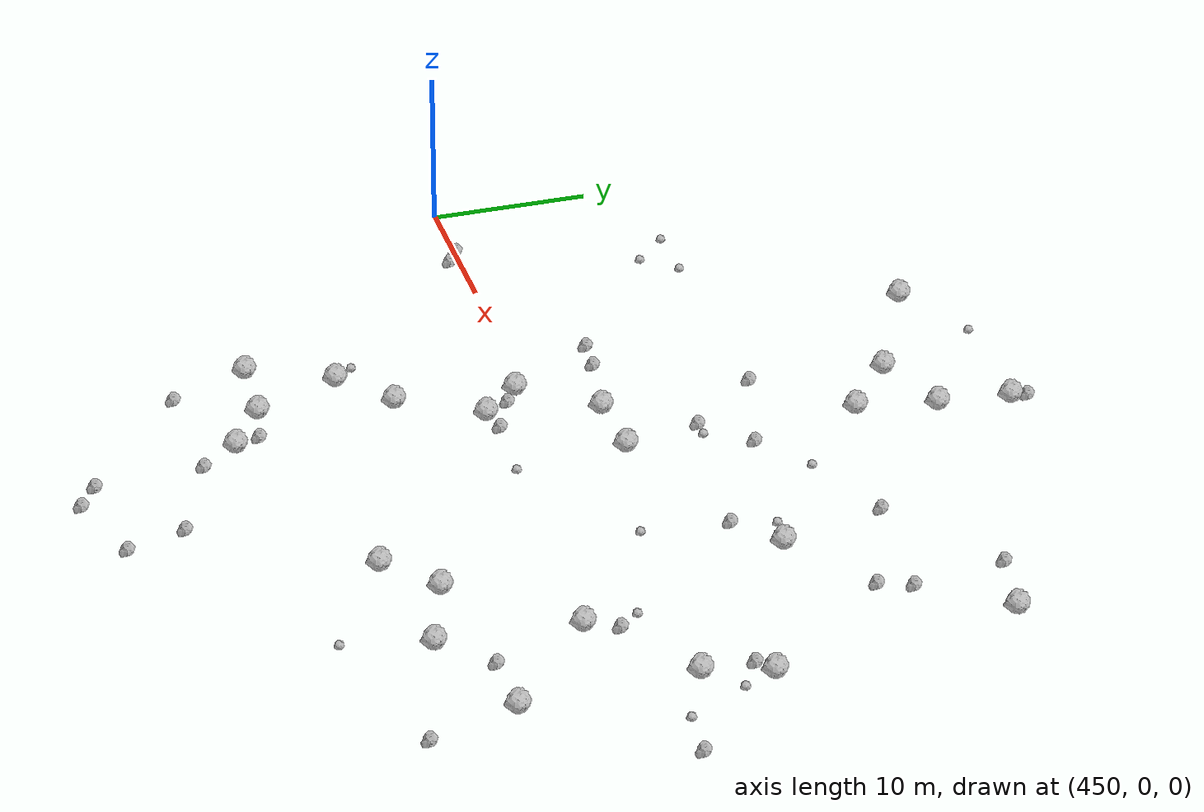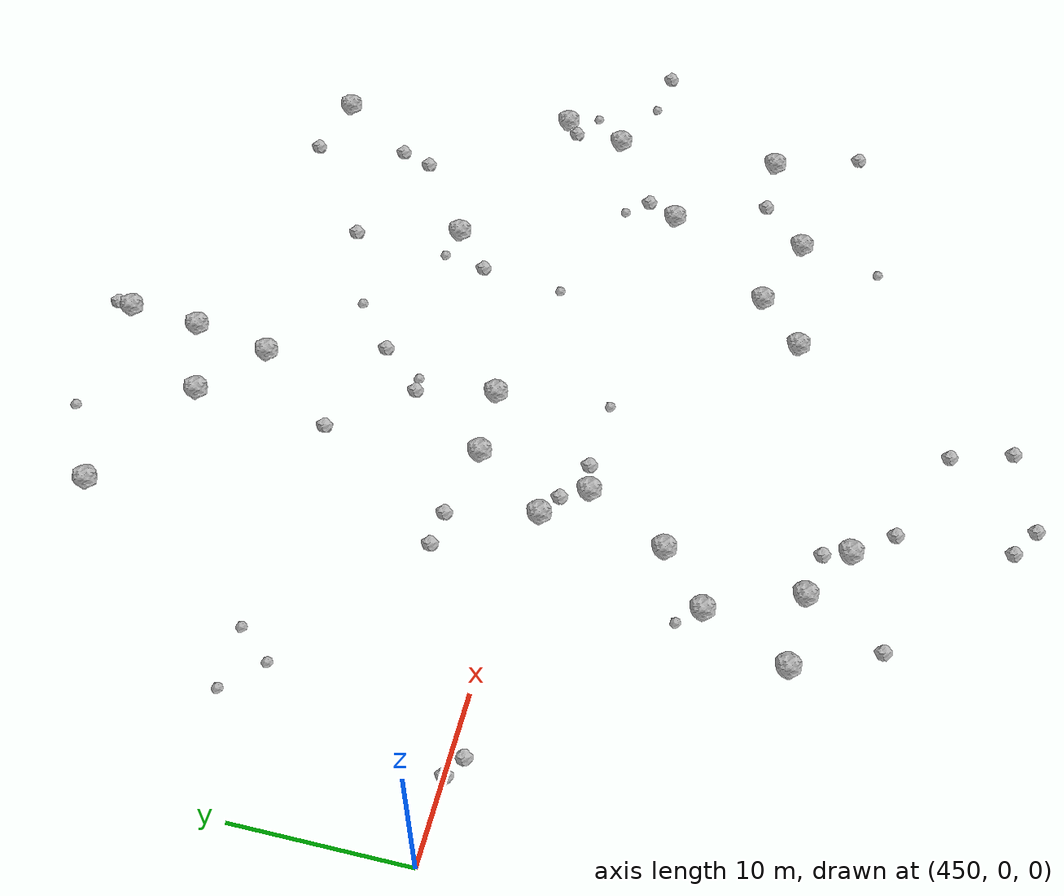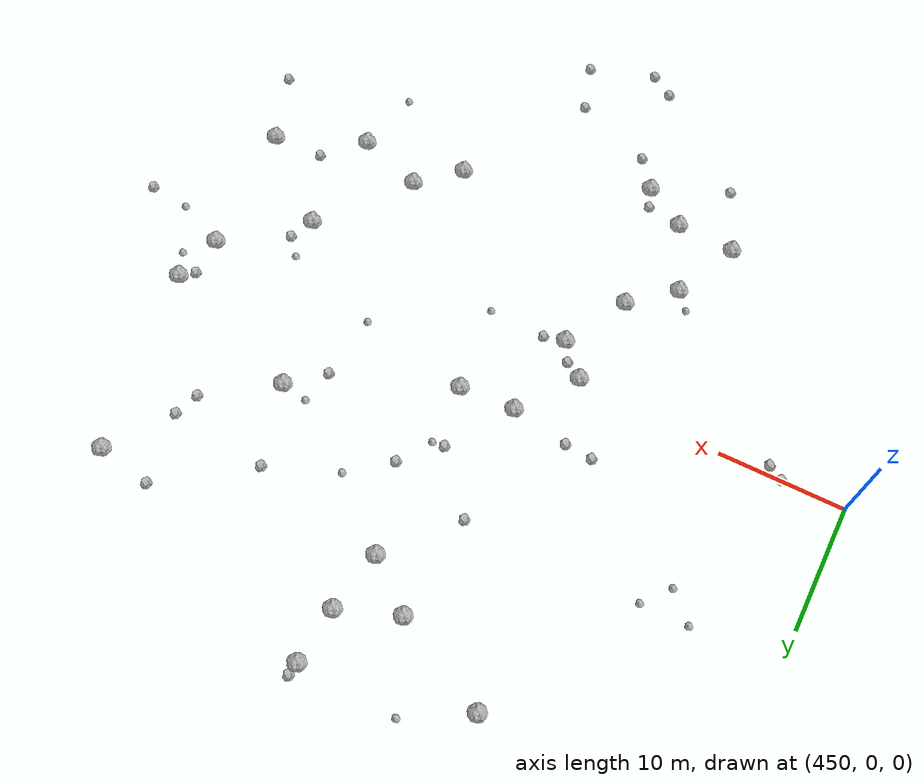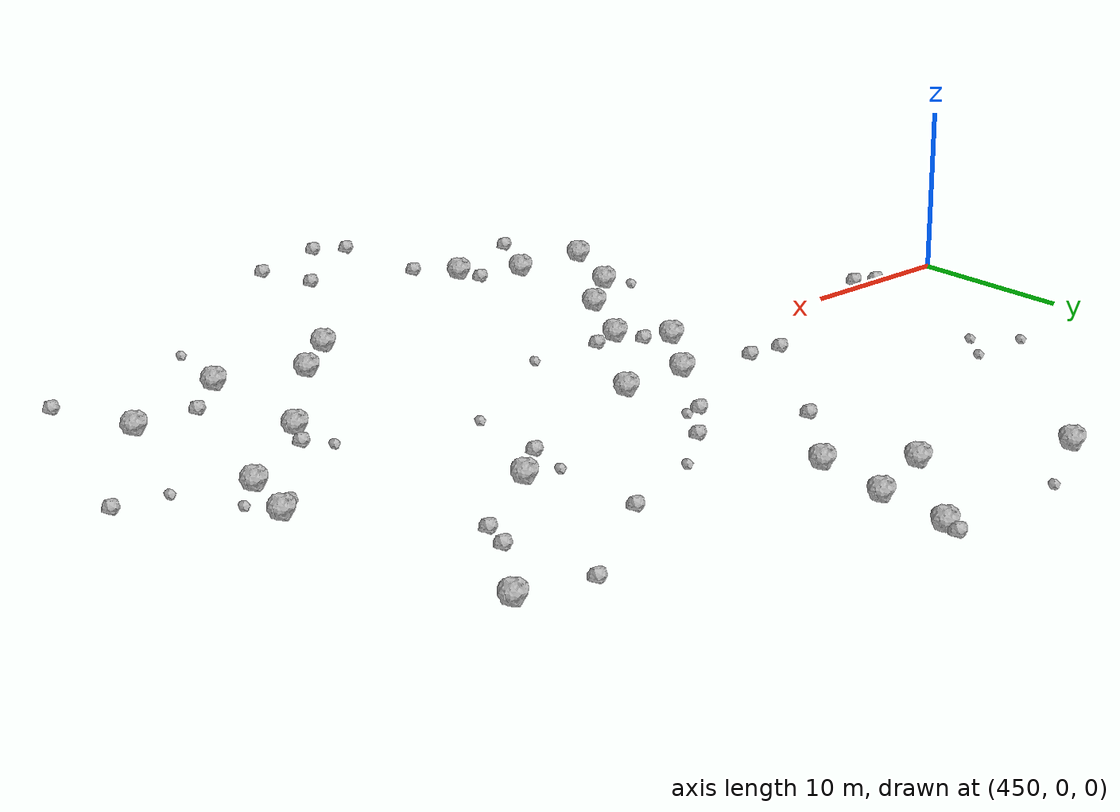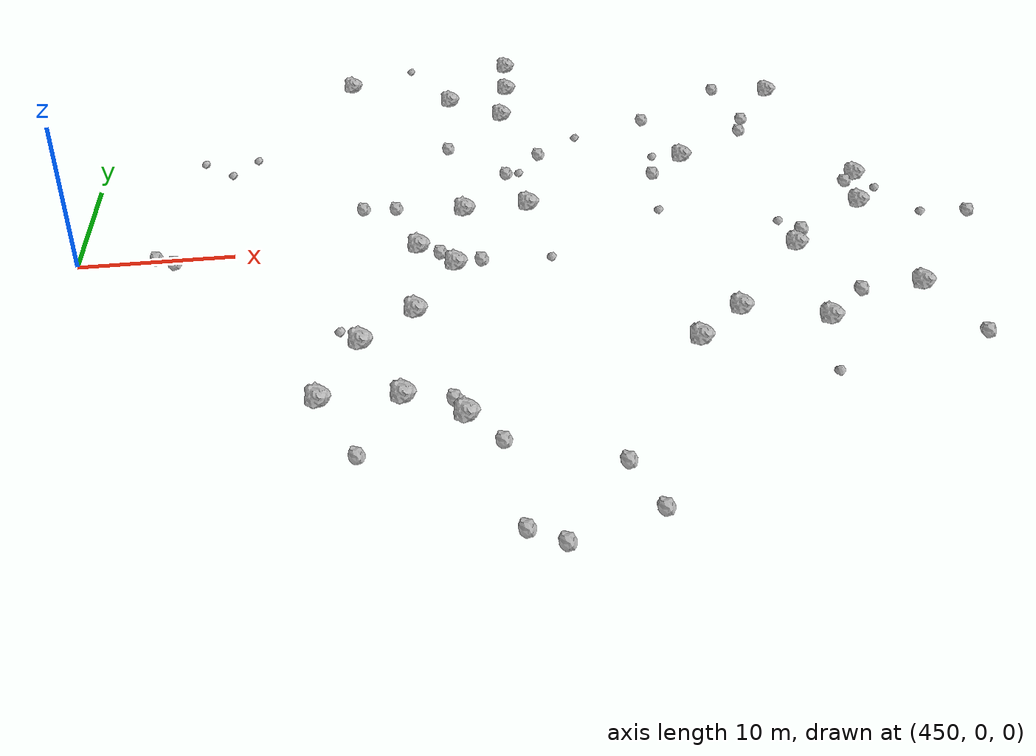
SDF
<sdf version="1.6">
 <world name="default">
  <include><uri>model://sun</uri></include>
  <model name="rock1_12_4">
   <include><uri>model://rock1</uri><pose>475.38712816575946 3.6597497842777784 0.5 0 0 0</pose></include>
  </model>
  <model name="rock1_12_5">
   <include><uri>model://rock1</uri><pose>492.1765965145493 9.553950753453364 0.5 0 0 0</pose></include>
  </model>
  <model name="rock1_12_6">
   <include><uri>model://rock1</uri><pose>479.6334707800957 18.34583266480417 0.5 0 0 0</pose></include>
  </model>
  <model name="rock1_12_7">
   <include><uri>model://rock1</uri><pose>465.5397822062643 -16.0872249455468 0.5 0 0 0</pose></include>
  </model>
  <model name="rock1_12_8">
   <include><uri>model://rock1</uri><pose>481.05212431955147 27.749189873142825 0.5 0 0 0</pose></include>
  </model>
  <model name="rock1_12_9">
   <include><uri>model://rock1</uri><pose>468.02823437310485 25.2873822146164 0.5 0 0 0</pose></include>
  </model>
  <model name="rock1_12_10">
   <include><uri>model://rock1</uri><pose>467.9548190284741 -10.990670234385927 0.5 0 0 0</pose></include>
  </model>
  <model name="rock1_12_11">
   <include><uri>model://rock1</uri><pose>473.5405119685411 -18.389000439485912 0.5 0 0 0</pose></include>
  </model>
  <model name="rock1_12_12">
   <include><uri>model://rock1</uri><pose>487.8936012136717 -13.231851367644918 0.5 0 0 0</pose></include>
  </model>
  <model name="rock1_12_13">
   <include><uri>model://rock1</uri><pose>503.99395568347546 5.1060604644737495 0.5 0 0 0</pose></include>
  </model>
  <model name="rock1_12_14">
   <include><uri>model://rock1</uri><pose>475.7863104564437 21.46747017201526 0.5 0 0 0</pose></include>
  </model>
  <model name="rock1_12_15">
   <include><uri>model://rock1</uri><pose>479.8607217393674 3.8565644876915712 0.5 0 0 0</pose></include>
  </model>
  <model name="rock1_12_16">
   <include><uri>model://rock1</uri><pose>471.3436229079211 -8.169220237619513 0.5 0 0 0</pose></include>
  </model>
  <model name="rock1_12_17">
   <include><uri>model://rock1</uri><pose>496.7841567332807 -3.7481318178828076 0.5 0 0 0</pose></include>
  </model>
  <model name="rock1_12_18">
   <include><uri>model://rock1</uri><pose>474.21461426633493 -3.1960787826727923 0.5 0 0 0</pose></include>
  </model>
  <model name="rock1_12_19">
   <include><uri>model://rock1</uri><pose>491.09349344661047 -10.475677510928307 0.5 0 0 0</pose></include>
  </model>
  <model name="rock1_12_20">
   <include><uri>model://rock1</uri><pose>496.20056597046533 -12.185286819103737 0.5 0 0 0</pose></include>
  </model>
  <model name="rock1_12_21">
   <include><uri>model://rock1</uri><pose>501.93369350198657 20.079162828147318 0.5 0 0 0</pose></include>
  </model>
  <model name="rock1_12_22">
   <include><uri>model://rock1</uri><pose>502.8676032759358 1.1774632613582234 0.5 0 0 0</pose></include>
  </model>
  <model name="rock1_12_23">
   <include><uri>model://rock1</uri><pose>470.20591334186514 -16.32534376506502 0.5 0 0 0</pose></include>
  </model>
  <model name="rock1_12_24">
   <include><uri>model://rock1</uri><pose>480.5944700836427 23.23432885666704 0.5 0 0 0</pose></include>
  </model>
  <model name="rock1_12_25">
   <include><uri>model://rock1</uri><pose>471.9557856139063 -0.789706468405015 0.5 0 0 0</pose></include>
  </model>
  <model name="rock1_12_26">
   <include><uri>model://rock1</uri><pose>503.2045336440394 -9.323421114017822 0.5 0 0 0</pose></include>
  </model>
  <model name="rock2_12_0">
   <include><uri>model://rock2</uri><pose>472.9923911438627 -16.857533257061036 0.3 0 0 0</pose></include>
  </model>
  <model name="rock2_12_1">
   <include><uri>model://rock2</uri><pose>481.46084646358855 -23.123066589581274 0.3 0 0 0</pose></include>
  </model>
  <model name="rock2_12_2">
   <include><uri>model://rock2</uri><pose>481.56211017129175 11.305273572199098 0.3 0 0 0</pose></include>
  </model>
  <model name="rock2_12_3">
   <include><uri>model://rock2</uri><pose>497.51118482735313 20.97960761687593 0.3 0 0 0</pose></include>
  </model>
  <model name="rock2_12_4">
   <include><uri>model://rock2</uri><pose>475.6216734110857 -27.271518029127883 0.3 0 0 0</pose></include>
  </model>
  <model name="rock2_12_5">
   <include><uri>model://rock2</uri><pose>497.6780164810595 -1.8518148535579506 0.3 0 0 0</pose></include>
  </model>
  <model name="rock2_12_6">
   <include><uri>model://rock2</uri><pose>497.6050886086205 13.266901659822445 0.3 0 0 0</pose></include>
  </model>
  <model name="rock2_12_7">
   <include><uri>model://rock2</uri><pose>498.3457592278758 15.237248959052685 0.3 0 0 0</pose></include>
  </model>
  <model name="rock2_12_8">
   <include><uri>model://rock2</uri><pose>455.03500022750063 0.00226066259380886 0.3 0 0 0</pose></include>
  </model>
  <model name="rock2_12_9">
   <include><uri>model://rock2</uri><pose>473.31216750635 -1.6401155413049828 0.3 0 0 0</pose></include>
  </model>
  <model name="rock2_12_10">
   <include><uri>model://rock2</uri><pose>489.41637347193205 7.238582186215915 0.3 0 0 0</pose></include>
  </model>
  <model name="rock2_12_11">
   <include><uri>model://rock2</uri><pose>482.5797799091764 -26.729382819938785 0.3 0 0 0</pose></include>
  </model>
  <model name="rock2_12_12">
   <include><uri>model://rock2</uri><pose>470.69422262610095 4.488091107175329 0.3 0 0 0</pose></include>
  </model>
  <model name="rock2_12_13">
   <include><uri>model://rock2</uri><pose>467.57560628265304 -20.9380306382943 0.3 0 0 0</pose></include>
  </model>
  <model name="rock2_12_14">
   <include><uri>model://rock2</uri><pose>481.1842722546469 28.754030070179077 0.3 0 0 0</pose></include>
  </model>
  <model name="rock2_12_15">
   <include><uri>model://rock2</uri><pose>468.457618159993 4.693152938199638 0.3 0 0 0</pose></include>
  </model>
  <model name="rock2_12_16">
   <include><uri>model://rock2</uri><pose>499.0809828017603 -9.408529495007578 0.3 0 0 0</pose></include>
  </model>
  <model name="rock2_12_17">
   <include><uri>model://rock2</uri><pose>477.41357293173013 -28.404005855660092 0.3 0 0 0</pose></include>
  </model>
  <model name="rock2_12_18">
   <include><uri>model://rock2</uri><pose>456.247042914407 -0.698652397038348 0.3 0 0 0</pose></include>
  </model>
  <model name="rock2_12_19">
   <include><uri>model://rock2</uri><pose>490.4869259591979 16.059761450629082 0.3 0 0 0</pose></include>
  </model>
  <model name="rock2_12_20">
   <include><uri>model://rock2</uri><pose>474.9799895609035 13.109196372316006 0.3 0 0 0</pose></include>
  </model>
  <model name="rock2_12_21">
   <include><uri>model://rock2</uri><pose>502.9115093987588 4.283919515659207 0.3 0 0 0</pose></include>
  </model>
  <model name="rock2_12_22">
   <include><uri>model://rock2</uri><pose>478.8292776207323 8.623464376771352 0.3 0 0 0</pose></include>
  </model>
  <model name="rock2_12_23">
   <include><uri>model://rock2</uri><pose>509.86680659824583 -0.8935785085357253 0.3 0 0 0</pose></include>
  </model>
  <model name="rock2_12_24">
   <include><uri>model://rock2</uri><pose>504.92538173112877 -14.726346767649419 0.3 0 0 0</pose></include>
  </model>
  <model name="rock2_12_25">
   <include><uri>model://rock2</uri><pose>475.89948337859875 -2.8102962946385013 0.3 0 0 0</pose></include>
  </model>
  <model name="rock2_12_26">
   <include><uri>model://rock2</uri><pose>475.2652303616895 -20.705681306569613 0.3 0 0 0</pose></include>
  </model>
  <model name="rock3_12_0">
   <include><uri>model://rock3</uri><pose>460.84788462347313 13.118090000548946 0.2 0 0 0</pose></include>
  </model>
  <model name="rock3_12_1">
   <include><uri>model://rock3</uri><pose>489.9905946237633 9.907304846122727 0.2 0 0 0</pose></include>
  </model>
  <model name="rock3_12_2">
   <include><uri>model://rock3</uri><pose>472.97056865675484 28.065339920797037 0.2 0 0 0</pose></include>
  </model>
  <model name="rock3_12_3">
   <include><uri>model://rock3</uri><pose>484.76738039855644 13.811081648809989 0.2 0 0 0</pose></include>
  </model>
  <model name="rock3_12_4">
   <include><uri>model://rock3</uri><pose>504.74563442207557 3.1254990894620107 0.2 0 0 0</pose></include>
  </model>
  <model name="rock3_12_5">
   <include><uri>model://rock3</uri><pose>459.1204102866764 11.034013897822199 0.2 0 0 0</pose></include>
  </model>
  <model name="rock3_12_6">
   <include><uri>model://rock3</uri><pose>479.7781044737419 8.673670779035717 0.2 0 0 0</pose></include>
  </model>
  <model name="rock3_12_7">
   <include><uri>model://rock3</uri><pose>488.7305841409902 2.0238787895309116 0.2 0 0 0</pose></include>
  </model>
  <model name="rock3_12_8">
   <include><uri>model://rock3</uri><pose>457.018855934219 13.075698329722947 0.2 0 0 0</pose></include>
  </model>
  <model name="rock3_12_9">
   <include><uri>model://rock3</uri><pose>466.7621817087614 -9.728247762674293 0.2 0 0 0</pose></include>
  </model>
  <model name="rock3_12_10">
   <include><uri>model://rock3</uri><pose>480.46008680850287 -3.049779995781922 0.2 0 0 0</pose></include>
  </model>
  <model name="rock3_12_11">
   <include><uri>model://rock3</uri><pose>506.6362816587677 -0.5634049556457796 0.2 0 0 0</pose></include>
  </model>
  <model name="rock3_12_12">
   <include><uri>model://rock3</uri><pose>496.49552722301775 -0.5255433282951039 0.2 0 0 0</pose></include>
  </model>
  <model name="rock3_12_13">
   <include><uri>model://rock3</uri><pose>494.8749290267241 -17.282773482480394 0.2 0 0 0</pose></include>
  </model>
 </world>
</sdf>
